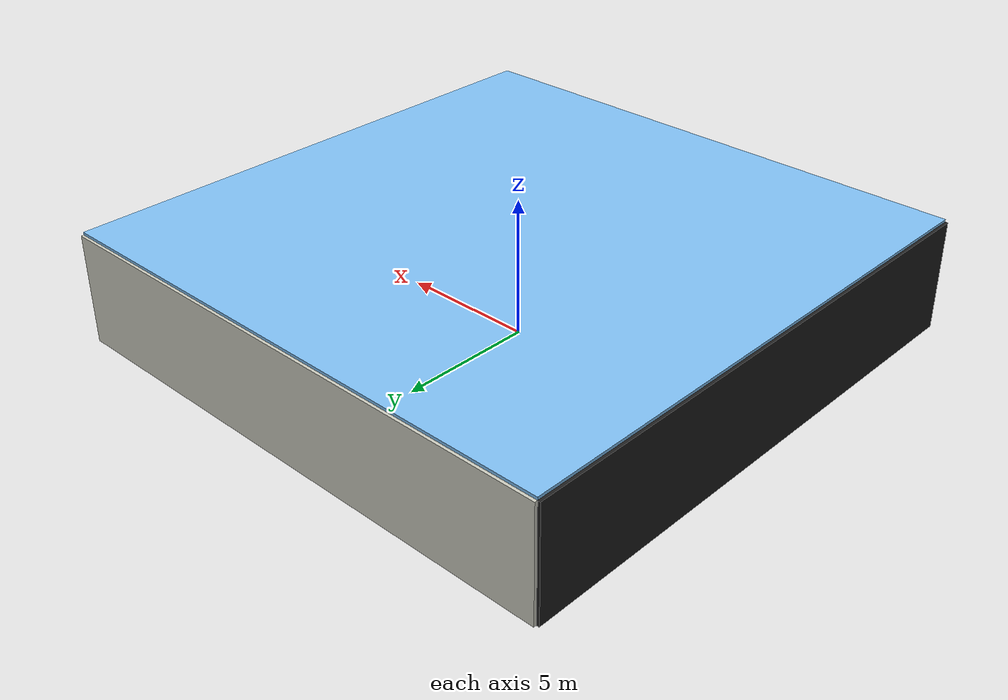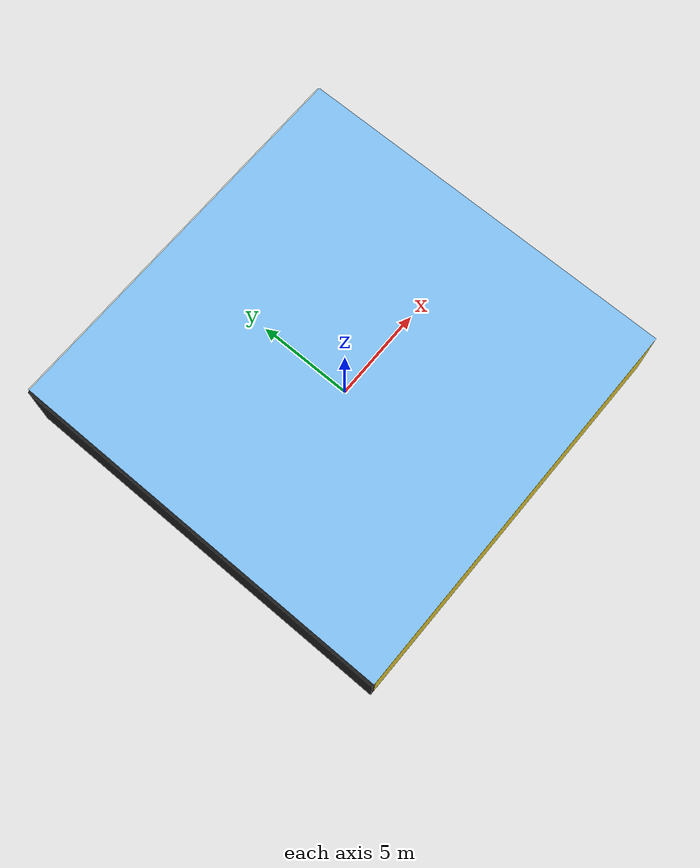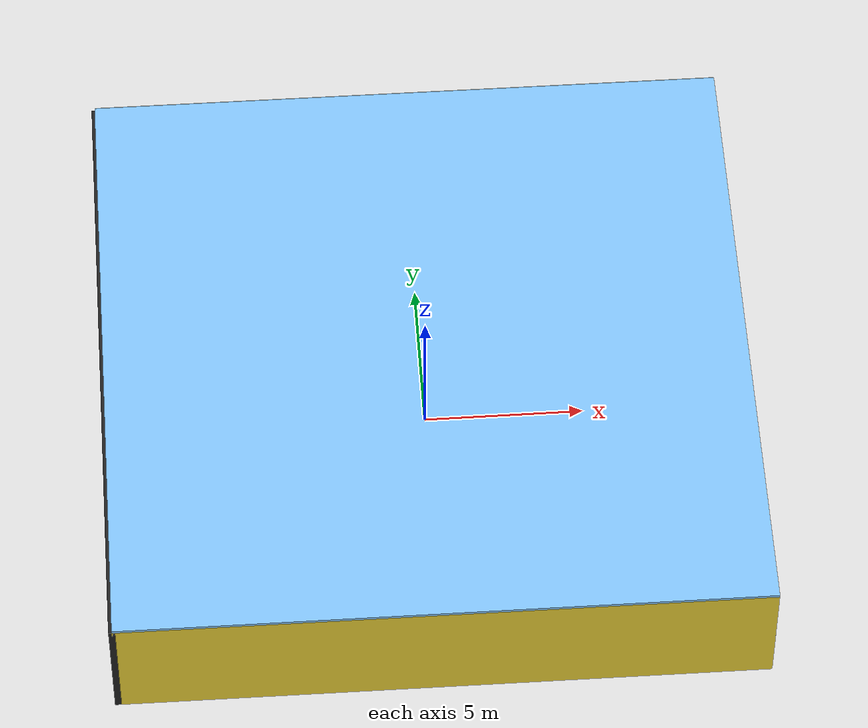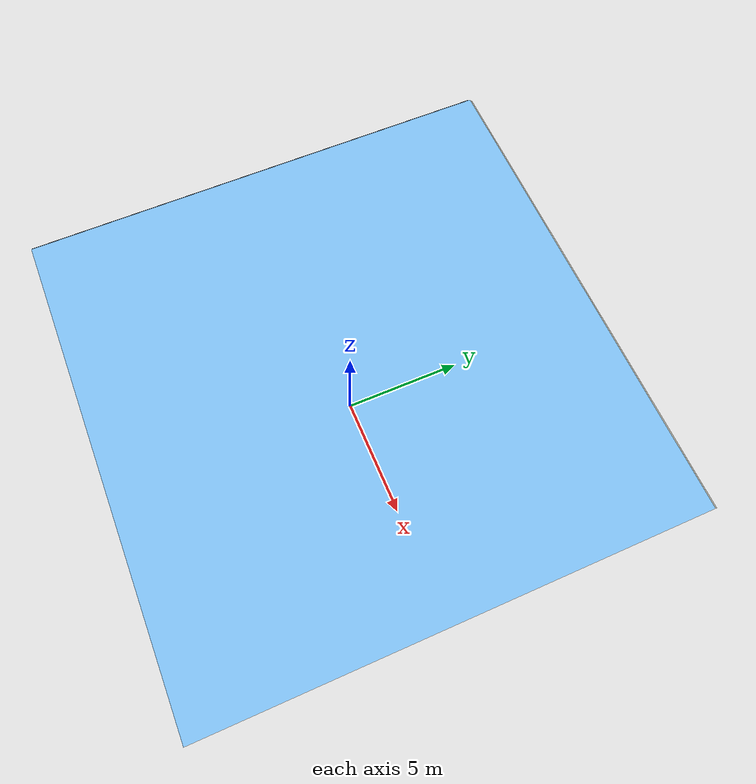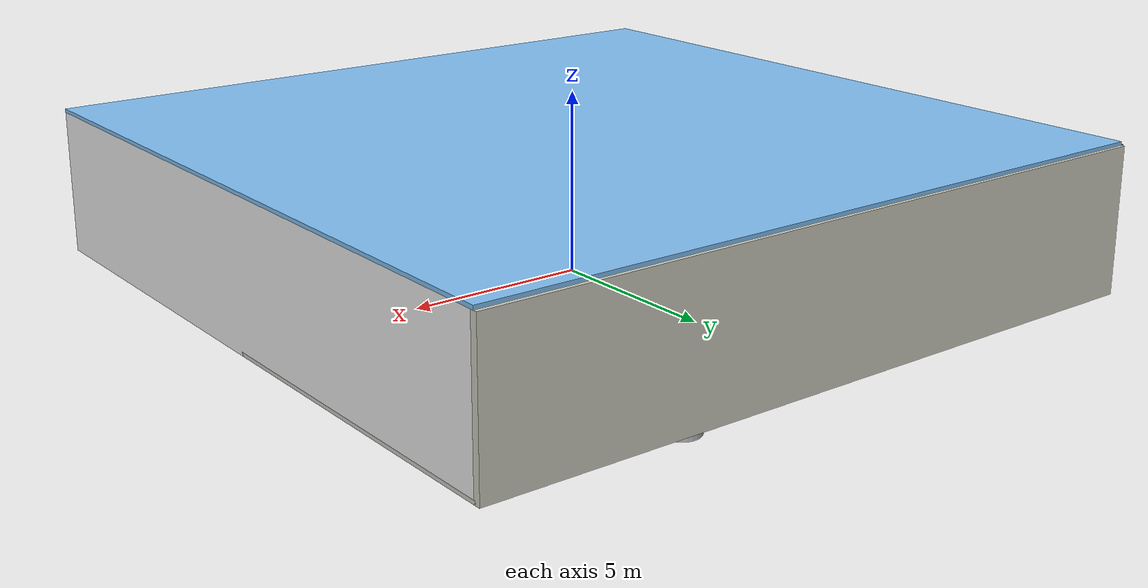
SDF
<sdf version="1.4">
 <world name="default">
  <physics type="ode">
   <max_step_size>0.001</max_step_size>
   <real_time_factor>1</real_time_factor>
   <real_time_update_rate>1000</real_time_update_rate>
   <gravity>0 0 -9.8</gravity>
  </physics>
  <scene><ambient>0.4 0.4 0.4 1</ambient><background>0.7 0.7 0.7 1</background><shadows>1</shadows></scene>
  <model name="Surrounding">
   <static>1</static>
   <link name="Ceiling">
    <collision name="Ceiling_Collision"><geometry><box><size>20 20 0.1</size></box></geometry></collision>
    <visual name="Ceiling_Visual">
     <geometry><box><size>20 20 0.1</size></box></geometry>
     <material>
      <script><uri>file://media/materials/scripts/gazebo.material</uri><name>Gazebo/SkyBlue</name></script>
     </material>
    </visual>
    <pose>0 0 4.05 0 0 0</pose>
   </link>
   <link name="Wall_South">
    <collision name="Wall_South_Collision">
     <geometry><box><size>20 0 4</size></box></geometry>
     <pose>0 0 2 0 -0 0</pose>
    </collision>
    <visual name="Wall_South_Visual">
     <pose>0 0 2 0 -0 0</pose>
     <geometry><box><size>20 0 4</size></box></geometry>
     <material>
      <script><uri>file://media/materials/scripts/gazebo.material</uri><name>Gazebo/ZincYellow</name></script>
     </material>
    </visual>
    <velocity_decay><linear>0</linear><angular>0</angular></velocity_decay>
    <pose>0 -10 0 0 -0 0</pose>
   </link>
   <link name="Wall_East">
    <collision name="Wall_21_Collision">
     <geometry><box><size>20 0 4</size></box></geometry>
     <pose>0 0 2 0 -0 0</pose>
    </collision>
    <visual name="Wall_21_Visual">
     <pose>0 0 2 0 -0 0</pose>
     <geometry><box><size>20 0 4</size></box></geometry>
     <material>
      <script><uri>file://media/materials/scripts/gazebo.material</uri><name>Gazebo/White</name></script>
     </material>
    </visual>
    <velocity_decay><linear>0</linear><angular>0</angular></velocity_decay>
    <pose>10 0 0 0 -0 1.5708</pose>
   </link>
   <link name="Wall_North">
    <collision name="Wall_22_Collision">
     <geometry><box><size>20 0.2 4</size></box></geometry>
     <pose>0 0 2 0 -0 0</pose>
    </collision>
    <visual name="Wall_22_Visual">
     <pose>0 0 2 0 -0 0</pose>
     <geometry><box><size>20 0.2 4</size></box></geometry>
     <material>
      <script><uri>file://media/materials/scripts/gazebo.material</uri><name>Gazebo/PaintedWall</name></script>
     </material>
    </visual>
    <velocity_decay><linear>0</linear><angular>0</angular></velocity_decay>
    <pose>0 10 0 0 -0 0</pose>
   </link>
   <link name="Wall_West">
    <collision name="Wall_23_Collision">
     <geometry><box><size>20 0.2 4</size></box></geometry>
     <pose>0 0 2 0 -0 0</pose>
    </collision>
    <visual name="Wall_23_Visual">
     <pose>0 0 2 0 -0 0</pose>
     <geometry><box><size>20 0.2 4</size></box></geometry>
     <material>
      <script><uri>file://media/materials/scripts/gazebo.material</uri><name>Gazebo/Black</name></script>
     </material>
    </visual>
    <velocity_decay><linear>0</linear><angular>0</angular></velocity_decay>
    <pose>-10 0 0 0 0 -1.5708</pose>
   </link>
   <link name="Ground_link">
    <collision name="collision">
     <pose>0 0 .05 0 -0 0</pose>
     <geometry><box><size>20 20 0.1</size></box></geometry>
    </collision>
    <visual name="visual">
     <pose>0 0 .05 0 -0 0</pose>
     <geometry><box><size>20 20 0.1</size></box></geometry>
     <material>
      <script><uri>file://media/materials/scripts/gazebo.material</uri><name>Gazebo/CeilingTiled</name></script>
     </material>
    </visual>
   </link>
   <static>1</static>
  </model>
  <spherical_coordinates>
   <surface_model>EARTH_WGS84</surface_model>
   <latitude_deg>0</latitude_deg>
   <longitude_deg>0</longitude_deg>
   <elevation>0</elevation>
   <heading_deg>0</heading_deg>
  </spherical_coordinates>
  <light name="lightball_0" type="diffuse">
   <diffuse>0.8 0.8 0.8 1</diffuse>
   <specular>0.2 0.2 0.2 1</specular>
   <attenuation>
    <range>100</range>
    <constant>0.7</constant>
    <linear>0.01</linear>
    <quadratic>0.001</quadratic>
   </attenuation>
   <direction>-0.5 0.1 -0.9</direction>
   <pose>-6.37752780007 1.30288773769 3.22383063561 0 0 0</pose>
  </light>
  <light name="lightball_1" type="diffuse">
   <diffuse>0.8 0.8 0.8 1</diffuse>
   <specular>0.2 0.2 0.2 1</specular>
   <attenuation>
    <range>100</range>
    <constant>0.7</constant>
    <linear>0.01</linear>
    <quadratic>0.001</quadratic>
   </attenuation>
   <direction>-0.5 0.1 -0.9</direction>
   <pose>8.07753800605 -3.27544378686 3.23078462639 0 0 0</pose>
  </light>
  <light name="lightball_2" type="diffuse">
   <diffuse>0.8 0.8 0.8 1</diffuse>
   <specular>0.2 0.2 0.2 1</specular>
   <attenuation>
    <range>100</range>
    <constant>0.7</constant>
    <linear>0.01</linear>
    <quadratic>0.001</quadratic>
   </attenuation>
   <direction>-0.5 0.1 -0.9</direction>
   <pose>0.743139389837 6.47058299151 3.16220285812 0 0 0</pose>
  </light>
  <light name="lightball_3" type="diffuse">
   <diffuse>0.8 0.8 0.8 1</diffuse>
   <specular>0.2 0.2 0.2 1</specular>
   <attenuation>
    <range>100</range>
    <constant>0.7</constant>
    <linear>0.01</linear>
    <quadratic>0.001</quadratic>
   </attenuation>
   <direction>-0.5 0.1 -0.9</direction>
   <pose>5.83174639873 -0.0041562077927 3.6190449633 0 0 0</pose>
  </light>
  <light name="lightball_4" type="diffuse">
   <diffuse>0.8 0.8 0.8 1</diffuse>
   <specular>0.2 0.2 0.2 1</specular>
   <attenuation>
    <range>100</range>
    <constant>0.7</constant>
    <linear>0.01</linear>
    <quadratic>0.001</quadratic>
   </attenuation>
   <direction>-0.5 0.1 -0.9</direction>
   <pose>9.85508519317 3.42751267442 1.34560185928 0 0 0</pose>
  </light>
  <light name="lightball_5" type="diffuse">
   <diffuse>0.8 0.8 0.8 1</diffuse>
   <specular>0.2 0.2 0.2 1</specular>
   <attenuation>
    <range>100</range>
    <constant>0.7</constant>
    <linear>0.01</linear>
    <quadratic>0.001</quadratic>
   </attenuation>
   <direction>-0.5 0.1 -0.9</direction>
   <pose>7.68423607499 -0.422822638292 3.07896440284 0 0 0</pose>
  </light>
  <light name="lightball_6" type="diffuse">
   <diffuse>0.8 0.8 0.8 1</diffuse>
   <specular>0.2 0.2 0.2 1</specular>
   <attenuation>
    <range>100</range>
    <constant>0.7</constant>
    <linear>0.01</linear>
    <quadratic>0.001</quadratic>
   </attenuation>
   <direction>-0.5 0.1 -0.9</direction>
   <pose>9.5344384063 1.66271275778 2.16258374194 0 0 0</pose>
  </light>
  <light name="lightball_7" type="diffuse">
   <diffuse>0.8 0.8 0.8 1</diffuse>
   <specular>0.2 0.2 0.2 1</specular>
   <attenuation>
    <range>100</range>
    <constant>0.7</constant>
    <linear>0.01</linear>
    <quadratic>0.001</quadratic>
   </attenuation>
   <direction>-0.5 0.1 -0.9</direction>
   <pose>-2.97414040329 7.16247150522 1.65211979708 0 0 0</pose>
  </light>
  <include>
   <uri>model://textured_shapes</uri>
   <pose>-4.42290139113 5.16757145806 0 0 0 1.41662583177</pose>
  </include>
  <include><uri>model://cabinet</uri><pose>5.12964257738 -5.00454082464 0 0 0 3.10575109883</pose></include>
  <include>
   <uri>model://textured_shapes</uri>
   <pose>4.80459547144 7.77331892184 0 0 0 0.623988851814</pose>
  </include>
 </world>
</sdf>

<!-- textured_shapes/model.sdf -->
<sdf version="1.6">
  <model name="textured_shapes">
    <pose>0 0 0.5 0 0 0</pose>
    <link name="box">
      <pose>0 -1.5 0 0 0 0</pose>
      <collision name="collision">
        <geometry>
          <box>
            <size>1 1 1</size>
          </box>
        </geometry>
      </collision>
      <visual name="visual">
        <geometry>
          <box>
            <size>1 1 1</size>
          </box>
        </geometry>
        <material>
          <script>
            <uri>model://../model_source/models/textured_shapes/materials/scripts</uri>
            <uri>model://../model_source/models/textured_shapes/materials/textures</uri>
            <name>TexturedShape/Squares</name>
          </script>
        </material>
      </visual>
    </link>
    <link name="sphere">
      <collision name="collision">
        <geometry>
          <sphere>
            <radius>0.5</radius>
          </sphere>
        </geometry>
      </collision>
      <visual name="visual">
        <geometry>
          <sphere>
            <radius>0.5</radius>
          </sphere>
        </geometry>
        <material>
          <script>
            <uri>model://../model_source/models/textured_shapes/materials/scripts</uri>
            <uri>model://../model_source/models/textured_shapes/materials/textures</uri>
            <name>TexturedShape/Squares</name>
          </script>
        </material>
      </visual>
    </link>
    <link name="cylinder">
      <pose>0 1.5 0 0 0 0</pose>
      <collision name="collision">
        <geometry>
          <cylinder>
            <radius>0.5</radius>
            <length>1</length>
          </cylinder>
        </geometry>
      </collision>
      <visual name="visual">
        <geometry>
          <cylinder>
            <radius>0.5</radius>
            <length>1</length>
          </cylinder>
        </geometry>
        <material>
          <script>
            <uri>model://../model_source/models/textured_shapes/materials/scripts</uri>
            <uri>model://../model_source/models/textured_shapes/materials/textures</uri>
            <name>TexturedShape/Squares</name>
          </script>
        </material>
      </visual>
    </link>
  </model>
</sdf>

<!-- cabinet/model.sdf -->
<sdf version="1.5">
  <model name="cabinet">
    <static>true</static>
    <link name="cabinet_bottom_plate">
      <inertial>
        <pose>0 0 -1 0 0 0</pose>
        <inertia>
          <ixx>2.050000</ixx>
          <ixy>0</ixy>
          <ixz>0</ixz>
          <iyy>2.050000</iyy>
          <iyz>0</iyz>
          <izz>2.050000</izz>
        </inertia>
        <mass>25.000000</mass>
      </inertial>
      <collision name="cabinet_bottom_plate_geom">
        <pose>0 0 0.010000 0 0 0</pose>
        <geometry>
          <box>
            <size>0.450000 0.450000 0.020000</size>
          </box>
        </geometry>
      </collision>
      <visual name="cabinet_bottom_plate_geom_visual">
        <pose>0 0 0.010000 0 0 0</pose>
        <geometry>
          <box>
            <size>0.450000 0.450000 0.020000</size>
          </box>
        </geometry>
        <material>
          <script>
            <uri>model://media/materials/scripts/gazebo.material</uri>
            <name>Gazebo/Wood</name>
          </script>
        </material>
      </visual>
      <collision name="cabinet_bottom_plate_geom_cabinet_back_plate">
        <pose>0.235000 0 0.510000 0 0 0</pose>
        <geometry>
          <box>
            <size>0.020000 0.450000 1.020000</size>
          </box>
        </geometry>
      </collision>
      <visual name="cabinet_bottom_plate_geom_cabinet_back_plate_visual">
        <pose>0.235000 0 0.510000 0 0 0</pose>
        <geometry>
          <box>
            <size>0.020000 0.450000 1.020000</size>
          </box>
        </geometry>
        <material>
          <script>
            <uri>model://media/materials/scripts/gazebo.material</uri>
            <name>Gazebo/Wood</name>
          </script>
        </material>
      </visual>
      <collision name="cabinet_bottom_plate_geom_cabinet_left_plate">
        <pose>0 0.235000 0.510000 0 0 0</pose>
        <geometry>
          <box>
            <size>0.450000 0.020000 1.020000</size>
          </box>
        </geometry>
      </collision>
      <visual name="cabinet_bottom_plate_geom_cabinet_left_plate_visual">
        <pose>0 0.235000 0.510000 0 0 0</pose>
        <geometry>
          <box>
            <size>0.450000 0.020000 1.020000</size>
          </box>
        </geometry>
        <material>
          <script>
            <uri>model://media/materials/scripts/gazebo.material</uri>
            <name>Gazebo/Wood</name>
          </script>
        </material>
      </visual>
      <collision name="cabinet_bottom_plate_geom_cabinet_middle_plate">
        <pose>0 0 0.510000 0 0 0</pose>
        <geometry>
          <box>
            <size>0.450000 0.450000 0.020000</size>
          </box>
        </geometry>
      </collision>
      <visual name="cabinet_bottom_plate_geom_cabinet_middle_plate_visual">
        <pose>0 0 0.510000 0 0 0</pose>
        <geometry>
          <box>
            <size>0.450000 0.450000 0.020000</size>
          </box>
        </geometry>
        <material>
          <script>
            <uri>model://media/materials/scripts/gazebo.material</uri>
            <name>Gazebo/Wood</name>
          </script>
        </material>
      </visual>
      <collision name="cabinet_bottom_plate_geom_cabinet_right_plate">
        <pose>0 -0.235000 0.510000 0 0 0</pose>
        <geometry>
          <box>
            <size>0.450000 0.020000 1.020000</size>
          </box>
        </geometry>
      </collision>
      <visual name="cabinet_bottom_plate_geom_cabinet_right_plate_visual">
        <pose>0 -0.235000 0.510000 0 0 0</pose>
        <geometry>
          <box>
            <size>0.450000 0.020000 1.020000</size>
          </box>
        </geometry>
        <material>
          <script>
            <uri>model://media/materials/scripts/gazebo.material</uri>
            <name>Gazebo/Wood</name>
          </script>
        </material>
      </visual>
      <collision name="cabinet_bottom_plate_geom_cabinet_top_plate">
        <pose>0 0 1.010000 0 0 0</pose>
        <geometry>
          <box>
            <size>0.450000 0.450000 0.020000</size>
          </box>
        </geometry>
      </collision>
      <visual name="cabinet_bottom_plate_geom_cabinet_top_plate_visual">
        <pose>0 0 1.010000 0 0 0</pose>
        <geometry>
          <box>
            <size>0.450000 0.450000 0.020000</size>
          </box>
        </geometry>
        <material>
          <script>
            <uri>model://media/materials/scripts/gazebo.material</uri>
            <name>Gazebo/Wood</name>
          </script>
        </material>
      </visual>
    </link>
  </model>
</sdf>
